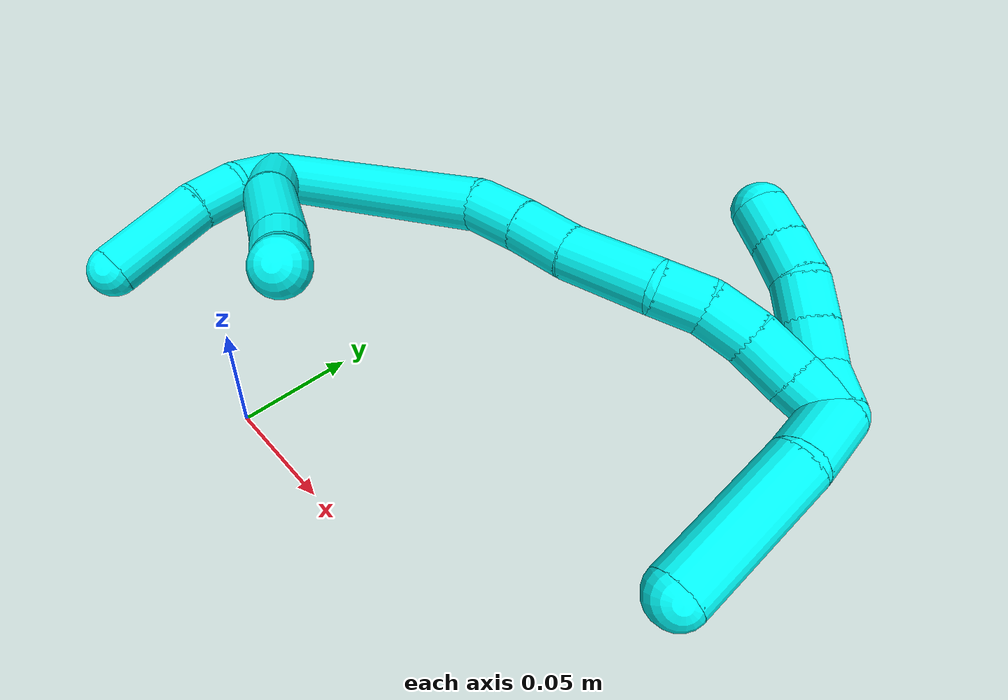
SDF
<sdf version="1.7">
 <world name="default">
  <model name="3">
   <static>0</static>
   <link name="3">
    <collision name="collision-cylinder-e_1_2_8">
     <pose>0.003374 -0.010912 0.024764 0.415025 0.124044 0.026149</pose>
     <geometry><cylinder><radius>0.0125</radius><length>0.054542</length></cylinder></geometry>
     <surface>
      <friction><ode><mu>1.16</mu><mu2>1.16</mu2><slip1>0</slip1><slip2>0</slip2></ode></friction>
      <contact><ode><kp>1e+06</kp><kd>1</kd><max_vel>0</max_vel><min_depth>0.001</min_depth></ode></contact>
     </surface>
    </collision>
    <visual name="visual-cylinder-e_1_2_8">
     <pose>0.003374 -0.010912 0.024764 0.415025 0.124044 0.026149</pose>
     <geometry><cylinder><radius>0.0125</radius><length>0.054542</length></cylinder></geometry>
     <material><ambient>0.003922 1 0.996078 1</ambient></material>
    </visual>
    <collision name="collision-cylinder-e_2_8_9">
     <pose>0.012665 -0.036156 0.071377 0.58061 0.22266 0.06677</pose>
     <geometry><cylinder><radius>0.0125</radius><length>0.053583</length></cylinder></geometry>
     <surface>
      <friction><ode><mu>1.16</mu><mu2>1.16</mu2><slip1>0</slip1><slip2>0</slip2></ode></friction>
      <contact><ode><kp>1e+06</kp><kd>1</kd><max_vel>0</max_vel><min_depth>0.001</min_depth></ode></contact>
     </surface>
    </collision>
    <visual name="visual-cylinder-e_2_8_9">
     <pose>0.012665 -0.036156 0.071377 0.58061 0.22266 0.06677</pose>
     <geometry><cylinder><radius>0.0125</radius><length>0.053583</length></cylinder></geometry>
     <material><ambient>0.003922 1 0.996078 1</ambient></material>
    </visual>
    <collision name="collision-cylinder-e_3_9_10">
     <pose>0.020158 -0.056254 0.102241 0.568864 0.146287 0.042838</pose>
     <geometry><cylinder><radius>0.0125</radius><length>0.021634</length></cylinder></geometry>
     <surface>
      <friction><ode><mu>1.16</mu><mu2>1.16</mu2><slip1>0</slip1><slip2>0</slip2></ode></friction>
      <contact><ode><kp>1e+06</kp><kd>1</kd><max_vel>0</max_vel><min_depth>0.001</min_depth></ode></contact>
     </surface>
    </collision>
    <visual name="visual-cylinder-e_3_9_10">
     <pose>0.020158 -0.056254 0.102241 0.568864 0.146287 0.042838</pose>
     <geometry><cylinder><radius>0.0125</radius><length>0.021634</length></cylinder></geometry>
     <material><ambient>0.003922 1 0.996078 1</ambient></material>
    </visual>
    <collision name="collision-cylinder-e_4_10_6">
     <pose>0.023843 -0.064284 0.120892 0.230907 0.209945 0.024436</pose>
     <geometry><cylinder><radius>0.0125</radius><length>0.020241</length></cylinder></geometry>
     <surface>
      <friction><ode><mu>1.16</mu><mu2>1.16</mu2><slip1>0</slip1><slip2>0</slip2></ode></friction>
      <contact><ode><kp>1e+06</kp><kd>1</kd><max_vel>0</max_vel><min_depth>0.001</min_depth></ode></contact>
     </surface>
    </collision>
    <visual name="visual-cylinder-e_4_10_6">
     <pose>0.023843 -0.064284 0.120892 0.230907 0.209945 0.024436</pose>
     <geometry><cylinder><radius>0.0125</radius><length>0.020241</length></cylinder></geometry>
     <material><ambient>0.003922 1 0.996078 1</ambient></material>
    </visual>
    <collision name="collision-cylinder-e_1_2_11">
     <pose>-0.008628 -0.003147 0.009597 0.316833 -0.706959 -0.117755</pose>
     <geometry><cylinder><radius>0.0125</radius><length>0.026567</length></cylinder></geometry>
     <surface>
      <friction><ode><mu>1.16</mu><mu2>1.16</mu2><slip1>0</slip1><slip2>0</slip2></ode></friction>
      <contact><ode><kp>1e+06</kp><kd>1</kd><max_vel>0</max_vel><min_depth>0.001</min_depth></ode></contact>
     </surface>
    </collision>
    <visual name="visual-cylinder-e_1_2_11">
     <pose>-0.008628 -0.003147 0.009597 0.316833 -0.706959 -0.117755</pose>
     <geometry><cylinder><radius>0.0125</radius><length>0.026567</length></cylinder></geometry>
     <material><ambient>0.003922 1 0.996078 1</ambient></material>
    </visual>
    <collision name="collision-cylinder-e_2_11_12">
     <pose>-0.02615 -0.010978 0.024609 0.713224 -0.893018 -0.353</pose>
     <geometry><cylinder><radius>0.0125</radius><length>0.022835</length></cylinder></geometry>
     <surface>
      <friction><ode><mu>1.16</mu><mu2>1.16</mu2><slip1>0</slip1><slip2>0</slip2></ode></friction>
      <contact><ode><kp>1e+06</kp><kd>1</kd><max_vel>0</max_vel><min_depth>0.001</min_depth></ode></contact>
     </surface>
    </collision>
    <visual name="visual-cylinder-e_2_11_12">
     <pose>-0.02615 -0.010978 0.024609 0.713224 -0.893018 -0.353</pose>
     <geometry><cylinder><radius>0.0125</radius><length>0.022835</length></cylinder></geometry>
     <material><ambient>0.003922 1 0.996078 1</ambient></material>
    </visual>
    <collision name="collision-cylinder-e_3_12_5">
     <pose>-0.053608 -0.029823 0.039764 0.968263 -0.823866 -0.451701</pose>
     <geometry><cylinder><radius>0.0125</radius><length>0.050598</length></cylinder></geometry>
     <surface>
      <friction><ode><mu>1.16</mu><mu2>1.16</mu2><slip1>0</slip1><slip2>0</slip2></ode></friction>
      <contact><ode><kp>1e+06</kp><kd>1</kd><max_vel>0</max_vel><min_depth>0.001</min_depth></ode></contact>
     </surface>
    </collision>
    <visual name="visual-cylinder-e_3_12_5">
     <pose>-0.053608 -0.029823 0.039764 0.968263 -0.823866 -0.451701</pose>
     <geometry><cylinder><radius>0.0125</radius><length>0.050598</length></cylinder></geometry>
     <material><ambient>0.003922 1 0.996078 1</ambient></material>
    </visual>
    <collision name="collision-cylinder-e_1_2_13">
     <pose>0.051655 -0.02066 0.023724 0.716469 1.02378 0.414648</pose>
     <geometry><cylinder><radius>0.0125</radius><length>0.120961</length></cylinder></geometry>
     <surface>
      <friction><ode><mu>1.16</mu><mu2>1.16</mu2><slip1>0</slip1><slip2>0</slip2></ode></friction>
      <contact><ode><kp>1e+06</kp><kd>1</kd><max_vel>0</max_vel><min_depth>0.001</min_depth></ode></contact>
     </surface>
    </collision>
    <visual name="visual-cylinder-e_1_2_13">
     <pose>0.051655 -0.02066 0.023724 0.716469 1.02378 0.414648</pose>
     <geometry><cylinder><radius>0.0125</radius><length>0.120961</length></cylinder></geometry>
     <material><ambient>0.003922 1 0.996078 1</ambient></material>
    </visual>
    <collision name="collision-cylinder-e_2_13_14">
     <pose>0.112299 -0.048634 0.052866 0.933279 0.779093 0.407851</pose>
     <geometry><cylinder><radius>0.0125</radius><length>0.025586</length></cylinder></geometry>
     <surface>
      <friction><ode><mu>1.16</mu><mu2>1.16</mu2><slip1>0</slip1><slip2>0</slip2></ode></friction>
      <contact><ode><kp>1e+06</kp><kd>1</kd><max_vel>0</max_vel><min_depth>0.001</min_depth></ode></contact>
     </surface>
    </collision>
    <visual name="visual-cylinder-e_2_13_14">
     <pose>0.112299 -0.048634 0.052866 0.933279 0.779093 0.407851</pose>
     <geometry><cylinder><radius>0.0125</radius><length>0.025586</length></cylinder></geometry>
     <material><ambient>0.003922 1 0.996078 1</ambient></material>
    </visual>
    <collision name="collision-cylinder-e_3_14_15">
     <pose>0.130116 -0.064148 0.063575 0.997725 0.735442 0.413775</pose>
     <geometry><cylinder><radius>0.0125</radius><length>0.026319</length></cylinder></geometry>
     <surface>
      <friction><ode><mu>1.16</mu><mu2>1.16</mu2><slip1>0</slip1><slip2>0</slip2></ode></friction>
      <contact><ode><kp>1e+06</kp><kd>1</kd><max_vel>0</max_vel><min_depth>0.001</min_depth></ode></contact>
     </surface>
    </collision>
    <visual name="visual-cylinder-e_3_14_15">
     <pose>0.130116 -0.064148 0.063575 0.997725 0.735442 0.413775</pose>
     <geometry><cylinder><radius>0.0125</radius><length>0.026319</length></cylinder></geometry>
     <material><ambient>0.003922 1 0.996078 1</ambient></material>
    </visual>
    <collision name="collision-cylinder-e_4_15_16">
     <pose>0.154455 -0.083262 0.077763 0.886836 0.83363 0.414547</pose>
     <geometry><cylinder><radius>0.0125</radius><length>0.041898</length></cylinder></geometry>
     <surface>
      <friction><ode><mu>1.16</mu><mu2>1.16</mu2><slip1>0</slip1><slip2>0</slip2></ode></friction>
      <contact><ode><kp>1e+06</kp><kd>1</kd><max_vel>0</max_vel><min_depth>0.001</min_depth></ode></contact>
     </surface>
    </collision>
    <visual name="visual-cylinder-e_4_15_16">
     <pose>0.154455 -0.083262 0.077763 0.886836 0.83363 0.414547</pose>
     <geometry><cylinder><radius>0.0125</radius><length>0.041898</length></cylinder></geometry>
     <material><ambient>0.003922 1 0.996078 1</ambient></material>
    </visual>
    <collision name="collision-cylinder-e_5_16_17">
     <pose>0.178851 -0.099743 0.087941 1.34486 0.999472 0.820117</pose>
     <geometry><cylinder><radius>0.0125</radius><length>0.021127</length></cylinder></geometry>
     <surface>
      <friction><ode><mu>1.16</mu><mu2>1.16</mu2><slip1>0</slip1><slip2>0</slip2></ode></friction>
      <contact><ode><kp>1e+06</kp><kd>1</kd><max_vel>0</max_vel><min_depth>0.001</min_depth></ode></contact>
     </surface>
    </collision>
    <visual name="visual-cylinder-e_5_16_17">
     <pose>0.178851 -0.099743 0.087941 1.34486 0.999472 0.820117</pose>
     <geometry><cylinder><radius>0.0125</radius><length>0.021127</length></cylinder></geometry>
     <material><ambient>0.003922 1 0.996078 1</ambient></material>
    </visual>
    <collision name="collision-cylinder-e_6_17_18">
     <pose>0.19493 -0.112951 0.090745 1.3739 0.745501 0.620733</pose>
     <geometry><cylinder><radius>0.0125</radius><length>0.021208</length></cylinder></geometry>
     <surface>
      <friction><ode><mu>1.16</mu><mu2>1.16</mu2><slip1>0</slip1><slip2>0</slip2></ode></friction>
      <contact><ode><kp>1e+06</kp><kd>1</kd><max_vel>0</max_vel><min_depth>0.001</min_depth></ode></contact>
     </surface>
    </collision>
    <visual name="visual-cylinder-e_6_17_18">
     <pose>0.19493 -0.112951 0.090745 1.3739 0.745501 0.620733</pose>
     <geometry><cylinder><radius>0.0125</radius><length>0.021208</length></cylinder></geometry>
     <material><ambient>0.003922 1 0.996078 1</ambient></material>
    </visual>
    <collision name="collision-cylinder-e_7_18_19">
     <pose>0.208186 -0.129636 0.09431 1.34884 0.579094 0.467644</pose>
     <geometry><cylinder><radius>0.0125</radius><length>0.022157</length></cylinder></geometry>
     <surface>
      <friction><ode><mu>1.16</mu><mu2>1.16</mu2><slip1>0</slip1><slip2>0</slip2></ode></friction>
      <contact><ode><kp>1e+06</kp><kd>1</kd><max_vel>0</max_vel><min_depth>0.001</min_depth></ode></contact>
     </surface>
    </collision>
    <visual name="visual-cylinder-e_7_18_19">
     <pose>0.208186 -0.129636 0.09431 1.34884 0.579094 0.467644</pose>
     <geometry><cylinder><radius>0.0125</radius><length>0.022157</length></cylinder></geometry>
     <material><ambient>0.003922 1 0.996078 1</ambient></material>
    </visual>
    <collision name="collision-cylinder-e_8_19_1">
     <pose>0.220056 -0.146834 0.099069 1.24907 0.594196 0.434382</pose>
     <geometry><cylinder><radius>0.0125</radius><length>0.020745</length></cylinder></geometry>
     <surface>
      <friction><ode><mu>1.16</mu><mu2>1.16</mu2><slip1>0</slip1><slip2>0</slip2></ode></friction>
      <contact><ode><kp>1e+06</kp><kd>1</kd><max_vel>0</max_vel><min_depth>0.001</min_depth></ode></contact>
     </surface>
    </collision>
    <visual name="visual-cylinder-e_8_19_1">
     <pose>0.220056 -0.146834 0.099069 1.24907 0.594196 0.434382</pose>
     <geometry><cylinder><radius>0.0125</radius><length>0.020745</length></cylinder></geometry>
     <material><ambient>0.003922 1 0.996078 1</ambient></material>
    </visual>
    <collision name="collision-cylinder-e_1_1_20">
     <pose>0.214456 -0.161481 0.110816 0.623441 -0.79805 -0.270075</pose>
     <geometry><cylinder><radius>0.0125</radius><length>0.031862</length></cylinder></geometry>
     <surface>
      <friction><ode><mu>1.16</mu><mu2>1.16</mu2><slip1>0</slip1><slip2>0</slip2></ode></friction>
      <contact><ode><kp>1e+06</kp><kd>1</kd><max_vel>0</max_vel><min_depth>0.001</min_depth></ode></contact>
     </surface>
    </collision>
    <visual name="visual-cylinder-e_1_1_20">
     <pose>0.214456 -0.161481 0.110816 0.623441 -0.79805 -0.270075</pose>
     <geometry><cylinder><radius>0.0125</radius><length>0.031862</length></cylinder></geometry>
     <material><ambient>0.003922 1 0.996078 1</ambient></material>
    </visual>
    <collision name="collision-cylinder-e_2_20_4">
     <pose>0.175523 -0.184927 0.130594 1.00571 -0.940721 -0.545345</pose>
     <geometry><cylinder><radius>0.0125</radius><length>0.068138</length></cylinder></geometry>
     <surface>
      <friction><ode><mu>1.16</mu><mu2>1.16</mu2><slip1>0</slip1><slip2>0</slip2></ode></friction>
      <contact><ode><kp>1e+06</kp><kd>1</kd><max_vel>0</max_vel><min_depth>0.001</min_depth></ode></contact>
     </surface>
    </collision>
    <visual name="visual-cylinder-e_2_20_4">
     <pose>0.175523 -0.184927 0.130594 1.00571 -0.940721 -0.545345</pose>
     <geometry><cylinder><radius>0.0125</radius><length>0.068138</length></cylinder></geometry>
     <material><ambient>0.003922 1 0.996078 1</ambient></material>
    </visual>
    <collision name="collision-cylinder-e_1_1_21">
     <pose>0.226007 -0.146622 0.09631 -2.15046 0.01439 -0.026619</pose>
     <geometry><cylinder><radius>0.0125</radius><length>0.02</length></cylinder></geometry>
     <surface>
      <friction><ode><mu>1.16</mu><mu2>1.16</mu2><slip1>0</slip1><slip2>0</slip2></ode></friction>
      <contact><ode><kp>1e+06</kp><kd>1</kd><max_vel>0</max_vel><min_depth>0.001</min_depth></ode></contact>
     </surface>
    </collision>
    <visual name="visual-cylinder-e_1_1_21">
     <pose>0.226007 -0.146622 0.09631 -2.15046 0.01439 -0.026619</pose>
     <geometry><cylinder><radius>0.0125</radius><length>0.02</length></cylinder></geometry>
     <material><ambient>0.003922 1 0.996078 1</ambient></material>
    </visual>
    <collision name="collision-cylinder-e_2_21_22">
     <pose>0.227512 -0.129014 0.087268 -1.93887 0.136589 -0.198723</pose>
     <geometry><cylinder><radius>0.0125</radius><length>0.02</length></cylinder></geometry>
     <surface>
      <friction><ode><mu>1.16</mu><mu2>1.16</mu2><slip1>0</slip1><slip2>0</slip2></ode></friction>
      <contact><ode><kp>1e+06</kp><kd>1</kd><max_vel>0</max_vel><min_depth>0.001</min_depth></ode></contact>
     </surface>
    </collision>
    <visual name="visual-cylinder-e_2_21_22">
     <pose>0.227512 -0.129014 0.087268 -1.93887 0.136589 -0.198723</pose>
     <geometry><cylinder><radius>0.0125</radius><length>0.02</length></cylinder></geometry>
     <material><ambient>0.003922 1 0.996078 1</ambient></material>
    </visual>
    <collision name="collision-cylinder-e_3_22_23">
     <pose>0.229673 -0.110278 0.08066 -1.88105 0.079985 -0.109588</pose>
     <geometry><cylinder><radius>0.0125</radius><length>0.02</length></cylinder></geometry>
     <surface>
      <friction><ode><mu>1.16</mu><mu2>1.16</mu2><slip1>0</slip1><slip2>0</slip2></ode></friction>
      <contact><ode><kp>1e+06</kp><kd>1</kd><max_vel>0</max_vel><min_depth>0.001</min_depth></ode></contact>
     </surface>
    </collision>
    <visual name="visual-cylinder-e_3_22_23">
     <pose>0.229673 -0.110278 0.08066 -1.88105 0.079985 -0.109588</pose>
     <geometry><cylinder><radius>0.0125</radius><length>0.02</length></cylinder></geometry>
     <material><ambient>0.003922 1 0.996078 1</ambient></material>
    </visual>
    <collision name="collision-cylinder-e_4_23_24">
     <pose>0.229637 -0.092197 0.072564 -2.10264 -0.083578 0.145976</pose>
     <geometry><cylinder><radius>0.0125</radius><length>0.02</length></cylinder></geometry>
     <surface>
      <friction><ode><mu>1.16</mu><mu2>1.16</mu2><slip1>0</slip1><slip2>0</slip2></ode></friction>
      <contact><ode><kp>1e+06</kp><kd>1</kd><max_vel>0</max_vel><min_depth>0.001</min_depth></ode></contact>
     </surface>
    </collision>
    <visual name="visual-cylinder-e_4_23_24">
     <pose>0.229637 -0.092197 0.072564 -2.10264 -0.083578 0.145976</pose>
     <geometry><cylinder><radius>0.0125</radius><length>0.02</length></cylinder></geometry>
     <material><ambient>0.003922 1 0.996078 1</ambient></material>
    </visual>
    <collision name="collision-cylinder-e_5_24_3">
     <pose>0.227368 -0.074869 0.062867 -2.05917 -0.143905 0.238685</pose>
     <geometry><cylinder><radius>0.0125</radius><length>0.02</length></cylinder></geometry>
     <surface>
      <friction><ode><mu>1.16</mu><mu2>1.16</mu2><slip1>0</slip1><slip2>0</slip2></ode></friction>
      <contact><ode><kp>1e+06</kp><kd>1</kd><max_vel>0</max_vel><min_depth>0.001</min_depth></ode></contact>
     </surface>
    </collision>
    <visual name="visual-cylinder-e_5_24_3">
     <pose>0.227368 -0.074869 0.062867 -2.05917 -0.143905 0.238685</pose>
     <geometry><cylinder><radius>0.0125</radius><length>0.02</length></cylinder></geometry>
     <material><ambient>0.003922 1 0.996078 1</ambient></material>
    </visual>
    <collision name="collision-sphere-3">
     <pose>0.225934 -0.066129 0.058223 0 -0 0</pose>
     <geometry><sphere><radius>0.0125</radius></sphere></geometry>
     <surface>
      <friction><ode><mu>1.16</mu><mu2>1.16</mu2><slip1>0</slip1><slip2>0</slip2></ode></friction>
      <contact><ode><kp>1e+06</kp><kd>1</kd><max_vel>0</max_vel><min_depth>0.001</min_depth></ode></contact>
     </surface>
    </collision>
    <visual name="visual-sphere-3">
     <pose>0.225934 -0.066129 0.058223 0 -0 0</pose>
     <geometry><sphere><radius>0.0125</radius></sphere></geometry>
     <material><ambient>0.003922 1 0.996078 1</ambient></material>
    </visual>
    <collision name="collision-sphere-24">
     <pose>0.228802 -0.083609 0.06751 0 -0 0</pose>
     <geometry><sphere><radius>0.0125</radius></sphere></geometry>
     <surface>
      <friction><ode><mu>1.16</mu><mu2>1.16</mu2><slip1>0</slip1><slip2>0</slip2></ode></friction>
      <contact><ode><kp>1e+06</kp><kd>1</kd><max_vel>0</max_vel><min_depth>0.001</min_depth></ode></contact>
     </surface>
    </collision>
    <visual name="visual-sphere-24">
     <pose>0.228802 -0.083609 0.06751 0 -0 0</pose>
     <geometry><sphere><radius>0.0125</radius></sphere></geometry>
     <material><ambient>0.003922 1 0.996078 1</ambient></material>
    </visual>
    <collision name="collision-sphere-23">
     <pose>0.230472 -0.100786 0.077617 0 -0 0</pose>
     <geometry><sphere><radius>0.0125</radius></sphere></geometry>
     <surface>
      <friction><ode><mu>1.16</mu><mu2>1.16</mu2><slip1>0</slip1><slip2>0</slip2></ode></friction>
      <contact><ode><kp>1e+06</kp><kd>1</kd><max_vel>0</max_vel><min_depth>0.001</min_depth></ode></contact>
     </surface>
    </collision>
    <visual name="visual-sphere-23">
     <pose>0.230472 -0.100786 0.077617 0 -0 0</pose>
     <geometry><sphere><radius>0.0125</radius></sphere></geometry>
     <material><ambient>0.003922 1 0.996078 1</ambient></material>
    </visual>
    <collision name="collision-sphere-22">
     <pose>0.228874 -0.11977 0.083704 0 -0 0</pose>
     <geometry><sphere><radius>0.0125</radius></sphere></geometry>
     <surface>
      <friction><ode><mu>1.16</mu><mu2>1.16</mu2><slip1>0</slip1><slip2>0</slip2></ode></friction>
      <contact><ode><kp>1e+06</kp><kd>1</kd><max_vel>0</max_vel><min_depth>0.001</min_depth></ode></contact>
     </surface>
    </collision>
    <visual name="visual-sphere-22">
     <pose>0.228874 -0.11977 0.083704 0 -0 0</pose>
     <geometry><sphere><radius>0.0125</radius></sphere></geometry>
     <material><ambient>0.003922 1 0.996078 1</ambient></material>
    </visual>
    <collision name="collision-sphere-21">
     <pose>0.226151 -0.138257 0.090833 0 -0 0</pose>
     <geometry><sphere><radius>0.0125</radius></sphere></geometry>
     <surface>
      <friction><ode><mu>1.16</mu><mu2>1.16</mu2><slip1>0</slip1><slip2>0</slip2></ode></friction>
      <contact><ode><kp>1e+06</kp><kd>1</kd><max_vel>0</max_vel><min_depth>0.001</min_depth></ode></contact>
     </surface>
    </collision>
    <visual name="visual-sphere-21">
     <pose>0.226151 -0.138257 0.090833 0 -0 0</pose>
     <geometry><sphere><radius>0.0125</radius></sphere></geometry>
     <material><ambient>0.003922 1 0.996078 1</ambient></material>
    </visual>
    <collision name="collision-sphere-4">
     <pose>0.147995 -0.20188 0.141344 0 -0 0</pose>
     <geometry><sphere><radius>0.0125</radius></sphere></geometry>
     <surface>
      <friction><ode><mu>1.16</mu><mu2>1.16</mu2><slip1>0</slip1><slip2>0</slip2></ode></friction>
      <contact><ode><kp>1e+06</kp><kd>1</kd><max_vel>0</max_vel><min_depth>0.001</min_depth></ode></contact>
     </surface>
    </collision>
    <visual name="visual-sphere-4">
     <pose>0.147995 -0.20188 0.141344 0 -0 0</pose>
     <geometry><sphere><radius>0.0125</radius></sphere></geometry>
     <material><ambient>0.003922 1 0.996078 1</ambient></material>
    </visual>
    <collision name="collision-sphere-20">
     <pose>0.20305 -0.167974 0.119845 0 -0 0</pose>
     <geometry><sphere><radius>0.0125</radius></sphere></geometry>
     <surface>
      <friction><ode><mu>1.16</mu><mu2>1.16</mu2><slip1>0</slip1><slip2>0</slip2></ode></friction>
      <contact><ode><kp>1e+06</kp><kd>1</kd><max_vel>0</max_vel><min_depth>0.001</min_depth></ode></contact>
     </surface>
    </collision>
    <visual name="visual-sphere-20">
     <pose>0.20305 -0.167974 0.119845 0 -0 0</pose>
     <geometry><sphere><radius>0.0125</radius></sphere></geometry>
     <material><ambient>0.003922 1 0.996078 1</ambient></material>
    </visual>
    <collision name="collision-sphere-11">
     <pose>-0.017256 -0.006293 0.019194 0 -0 0</pose>
     <geometry><sphere><radius>0.0125</radius></sphere></geometry>
     <surface>
      <friction><ode><mu>1.16</mu><mu2>1.16</mu2><slip1>0</slip1><slip2>0</slip2></ode></friction>
      <contact><ode><kp>1e+06</kp><kd>1</kd><max_vel>0</max_vel><min_depth>0.001</min_depth></ode></contact>
     </surface>
    </collision>
    <visual name="visual-sphere-11">
     <pose>-0.017256 -0.006293 0.019194 0 -0 0</pose>
     <geometry><sphere><radius>0.0125</radius></sphere></geometry>
     <material><ambient>0.003922 1 0.996078 1</ambient></material>
    </visual>
    <collision name="collision-sphere-6">
     <pose>0.025953 -0.066549 0.130528 0 -0 0</pose>
     <geometry><sphere><radius>0.0125</radius></sphere></geometry>
     <surface>
      <friction><ode><mu>1.16</mu><mu2>1.16</mu2><slip1>0</slip1><slip2>0</slip2></ode></friction>
      <contact><ode><kp>1e+06</kp><kd>1</kd><max_vel>0</max_vel><min_depth>0.001</min_depth></ode></contact>
     </surface>
    </collision>
    <visual name="visual-sphere-6">
     <pose>0.025953 -0.066549 0.130528 0 -0 0</pose>
     <geometry><sphere><radius>0.0125</radius></sphere></geometry>
     <material><ambient>0.003922 1 0.996078 1</ambient></material>
    </visual>
    <collision name="collision-sphere-10">
     <pose>0.021734 -0.062019 0.111257 0 -0 0</pose>
     <geometry><sphere><radius>0.0125</radius></sphere></geometry>
     <surface>
      <friction><ode><mu>1.16</mu><mu2>1.16</mu2><slip1>0</slip1><slip2>0</slip2></ode></friction>
      <contact><ode><kp>1e+06</kp><kd>1</kd><max_vel>0</max_vel><min_depth>0.001</min_depth></ode></contact>
     </surface>
    </collision>
    <visual name="visual-sphere-10">
     <pose>0.021734 -0.062019 0.111257 0 -0 0</pose>
     <geometry><sphere><radius>0.0125</radius></sphere></geometry>
     <material><ambient>0.003922 1 0.996078 1</ambient></material>
    </visual>
    <collision name="collision-sphere-9">
     <pose>0.018581 -0.05049 0.093225 0 -0 0</pose>
     <geometry><sphere><radius>0.0125</radius></sphere></geometry>
     <surface>
      <friction><ode><mu>1.16</mu><mu2>1.16</mu2><slip1>0</slip1><slip2>0</slip2></ode></friction>
      <contact><ode><kp>1e+06</kp><kd>1</kd><max_vel>0</max_vel><min_depth>0.001</min_depth></ode></contact>
     </surface>
    </collision>
    <visual name="visual-sphere-9">
     <pose>0.018581 -0.05049 0.093225 0 -0 0</pose>
     <geometry><sphere><radius>0.0125</radius></sphere></geometry>
     <material><ambient>0.003922 1 0.996078 1</ambient></material>
    </visual>
    <collision name="collision-sphere-2">
     <geometry><sphere><radius>0.0125</radius></sphere></geometry>
     <surface>
      <friction><ode><mu>1.16</mu><mu2>1.16</mu2><slip1>0</slip1><slip2>0</slip2></ode></friction>
      <contact><ode><kp>1e+06</kp><kd>1</kd><max_vel>0</max_vel><min_depth>0.001</min_depth></ode></contact>
     </surface>
    </collision>
    <visual name="visual-sphere-2">
     <geometry><sphere><radius>0.0125</radius></sphere></geometry>
     <material><ambient>0.003922 1 0.996078 1</ambient></material>
    </visual>
    <collision name="collision-sphere-19">
     <pose>0.214249 -0.138681 0.096351 0 -0 0</pose>
     <geometry><sphere><radius>0.0125</radius></sphere></geometry>
     <surface>
      <friction><ode><mu>1.16</mu><mu2>1.16</mu2><slip1>0</slip1><slip2>0</slip2></ode></friction>
      <contact><ode><kp>1e+06</kp><kd>1</kd><max_vel>0</max_vel><min_depth>0.001</min_depth></ode></contact>
     </surface>
    </collision>
    <visual name="visual-sphere-19">
     <pose>0.214249 -0.138681 0.096351 0 -0 0</pose>
     <geometry><sphere><radius>0.0125</radius></sphere></geometry>
     <material><ambient>0.003922 1 0.996078 1</ambient></material>
    </visual>
    <collision name="collision-sphere-8">
     <pose>0.006748 -0.021823 0.049528 0 -0 0</pose>
     <geometry><sphere><radius>0.0125</radius></sphere></geometry>
     <surface>
      <friction><ode><mu>1.16</mu><mu2>1.16</mu2><slip1>0</slip1><slip2>0</slip2></ode></friction>
      <contact><ode><kp>1e+06</kp><kd>1</kd><max_vel>0</max_vel><min_depth>0.001</min_depth></ode></contact>
     </surface>
    </collision>
    <visual name="visual-sphere-8">
     <pose>0.006748 -0.021823 0.049528 0 -0 0</pose>
     <geometry><sphere><radius>0.0125</radius></sphere></geometry>
     <material><ambient>0.003922 1 0.996078 1</ambient></material>
    </visual>
    <collision name="collision-sphere-12">
     <pose>-0.035044 -0.015662 0.030023 0 -0 0</pose>
     <geometry><sphere><radius>0.0125</radius></sphere></geometry>
     <surface>
      <friction><ode><mu>1.16</mu><mu2>1.16</mu2><slip1>0</slip1><slip2>0</slip2></ode></friction>
      <contact><ode><kp>1e+06</kp><kd>1</kd><max_vel>0</max_vel><min_depth>0.001</min_depth></ode></contact>
     </surface>
    </collision>
    <visual name="visual-sphere-12">
     <pose>-0.035044 -0.015662 0.030023 0 -0 0</pose>
     <geometry><sphere><radius>0.0125</radius></sphere></geometry>
     <material><ambient>0.003922 1 0.996078 1</ambient></material>
    </visual>
    <collision name="collision-sphere-5">
     <pose>-0.072171 -0.043984 0.049505 0 -0 0</pose>
     <geometry><sphere><radius>0.0125</radius></sphere></geometry>
     <surface>
      <friction><ode><mu>1.16</mu><mu2>1.16</mu2><slip1>0</slip1><slip2>0</slip2></ode></friction>
      <contact><ode><kp>1e+06</kp><kd>1</kd><max_vel>0</max_vel><min_depth>0.001</min_depth></ode></contact>
     </surface>
    </collision>
    <visual name="visual-sphere-5">
     <pose>-0.072171 -0.043984 0.049505 0 -0 0</pose>
     <geometry><sphere><radius>0.0125</radius></sphere></geometry>
     <material><ambient>0.003922 1 0.996078 1</ambient></material>
    </visual>
    <collision name="collision-sphere-13">
     <pose>0.10331 -0.041319 0.047448 0 -0 0</pose>
     <geometry><sphere><radius>0.0125</radius></sphere></geometry>
     <surface>
      <friction><ode><mu>1.16</mu><mu2>1.16</mu2><slip1>0</slip1><slip2>0</slip2></ode></friction>
      <contact><ode><kp>1e+06</kp><kd>1</kd><max_vel>0</max_vel><min_depth>0.001</min_depth></ode></contact>
     </surface>
    </collision>
    <visual name="visual-sphere-13">
     <pose>0.10331 -0.041319 0.047448 0 -0 0</pose>
     <geometry><sphere><radius>0.0125</radius></sphere></geometry>
     <material><ambient>0.003922 1 0.996078 1</ambient></material>
    </visual>
    <collision name="collision-sphere-14">
     <pose>0.121287 -0.055949 0.058284 0 -0 0</pose>
     <geometry><sphere><radius>0.0125</radius></sphere></geometry>
     <surface>
      <friction><ode><mu>1.16</mu><mu2>1.16</mu2><slip1>0</slip1><slip2>0</slip2></ode></friction>
      <contact><ode><kp>1e+06</kp><kd>1</kd><max_vel>0</max_vel><min_depth>0.001</min_depth></ode></contact>
     </surface>
    </collision>
    <visual name="visual-sphere-14">
     <pose>0.121287 -0.055949 0.058284 0 -0 0</pose>
     <geometry><sphere><radius>0.0125</radius></sphere></geometry>
     <material><ambient>0.003922 1 0.996078 1</ambient></material>
    </visual>
    <collision name="collision-sphere-15">
     <pose>0.138945 -0.072347 0.068866 0 -0 0</pose>
     <geometry><sphere><radius>0.0125</radius></sphere></geometry>
     <surface>
      <friction><ode><mu>1.16</mu><mu2>1.16</mu2><slip1>0</slip1><slip2>0</slip2></ode></friction>
      <contact><ode><kp>1e+06</kp><kd>1</kd><max_vel>0</max_vel><min_depth>0.001</min_depth></ode></contact>
     </surface>
    </collision>
    <visual name="visual-sphere-15">
     <pose>0.138945 -0.072347 0.068866 0 -0 0</pose>
     <geometry><sphere><radius>0.0125</radius></sphere></geometry>
     <material><ambient>0.003922 1 0.996078 1</ambient></material>
    </visual>
    <collision name="collision-sphere-16">
     <pose>0.169965 -0.094176 0.086661 0 -0 0</pose>
     <geometry><sphere><radius>0.0125</radius></sphere></geometry>
     <surface>
      <friction><ode><mu>1.16</mu><mu2>1.16</mu2><slip1>0</slip1><slip2>0</slip2></ode></friction>
      <contact><ode><kp>1e+06</kp><kd>1</kd><max_vel>0</max_vel><min_depth>0.001</min_depth></ode></contact>
     </surface>
    </collision>
    <visual name="visual-sphere-16">
     <pose>0.169965 -0.094176 0.086661 0 -0 0</pose>
     <geometry><sphere><radius>0.0125</radius></sphere></geometry>
     <material><ambient>0.003922 1 0.996078 1</ambient></material>
    </visual>
    <collision name="collision-sphere-17">
     <pose>0.187737 -0.10531 0.089221 0 -0 0</pose>
     <geometry><sphere><radius>0.0125</radius></sphere></geometry>
     <surface>
      <friction><ode><mu>1.16</mu><mu2>1.16</mu2><slip1>0</slip1><slip2>0</slip2></ode></friction>
      <contact><ode><kp>1e+06</kp><kd>1</kd><max_vel>0</max_vel><min_depth>0.001</min_depth></ode></contact>
     </surface>
    </collision>
    <visual name="visual-sphere-17">
     <pose>0.187737 -0.10531 0.089221 0 -0 0</pose>
     <geometry><sphere><radius>0.0125</radius></sphere></geometry>
     <material><ambient>0.003922 1 0.996078 1</ambient></material>
    </visual>
    <collision name="collision-sphere-18">
     <pose>0.202123 -0.120592 0.092269 0 -0 0</pose>
     <geometry><sphere><radius>0.0125</radius></sphere></geometry>
     <surface>
      <friction><ode><mu>1.16</mu><mu2>1.16</mu2><slip1>0</slip1><slip2>0</slip2></ode></friction>
      <contact><ode><kp>1e+06</kp><kd>1</kd><max_vel>0</max_vel><min_depth>0.001</min_depth></ode></contact>
     </surface>
    </collision>
    <visual name="visual-sphere-18">
     <pose>0.202123 -0.120592 0.092269 0 -0 0</pose>
     <geometry><sphere><radius>0.0125</radius></sphere></geometry>
     <material><ambient>0.003922 1 0.996078 1</ambient></material>
    </visual>
    <collision name="collision-sphere-1">
     <pose>0.225863 -0.154988 0.101787 0 -0 0</pose>
     <geometry><sphere><radius>0.0125</radius></sphere></geometry>
     <surface>
      <friction><ode><mu>1.16</mu><mu2>1.16</mu2><slip1>0</slip1><slip2>0</slip2></ode></friction>
      <contact><ode><kp>1e+06</kp><kd>1</kd><max_vel>0</max_vel><min_depth>0.001</min_depth></ode></contact>
     </surface>
    </collision>
    <visual name="visual-sphere-1">
     <pose>0.225863 -0.154988 0.101787 0 -0 0</pose>
     <geometry><sphere><radius>0.0125</radius></sphere></geometry>
     <material><ambient>0.003922 1 0.996078 1</ambient></material>
    </visual>
    <inertial>
     <pose>0.101263 -0.073387 0.066889 0 -0 0</pose>
     <mass>0.75</mass>
     <inertia><ixx>0.000186</ixx><ixy>0</ixy><ixz>0</ixz><iyy>0.000229</iyy><iyz>0</iyz><izz>9e-06</izz></inertia>
    </inertial>
   </link>
   <pose>-0.11532 0.091303 0.020584 0.739657 -0.150846 0.936085</pose>
  </model>
 </world>
</sdf>
